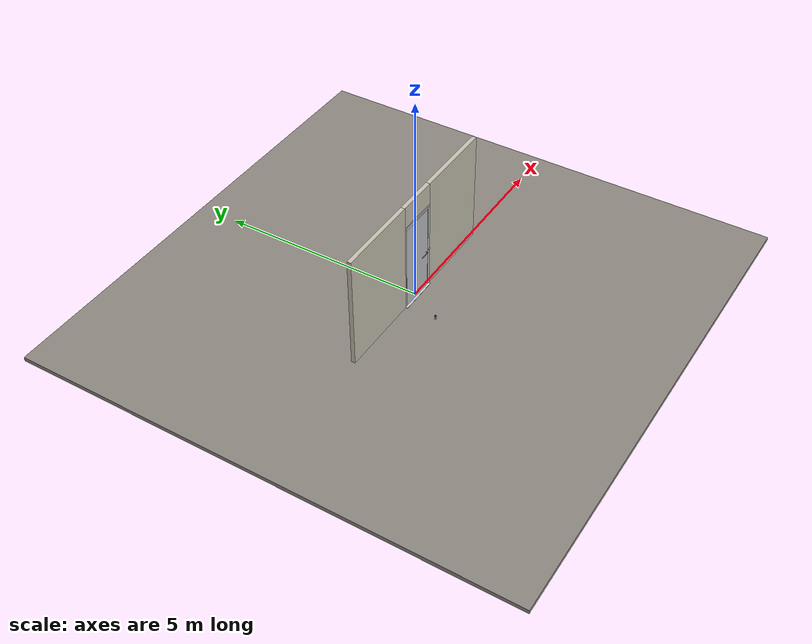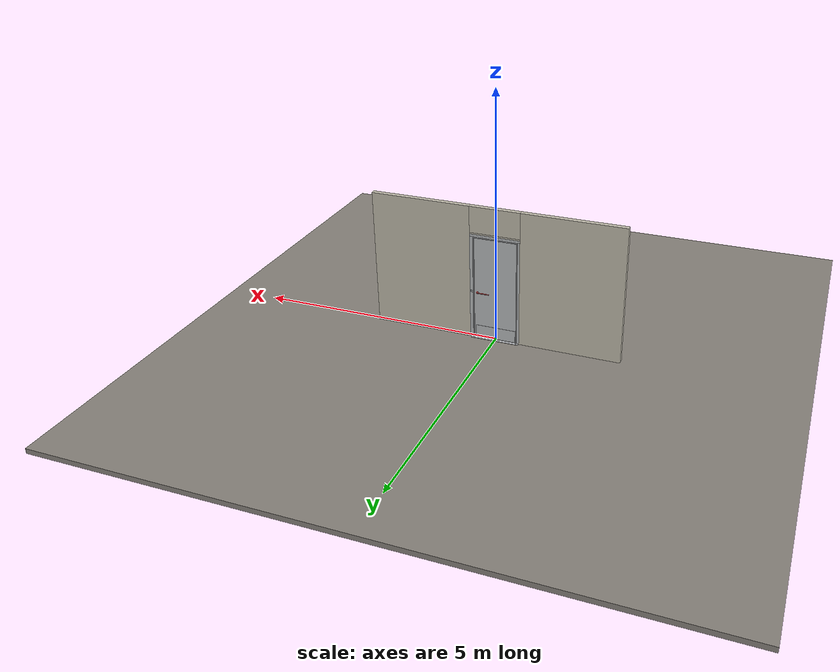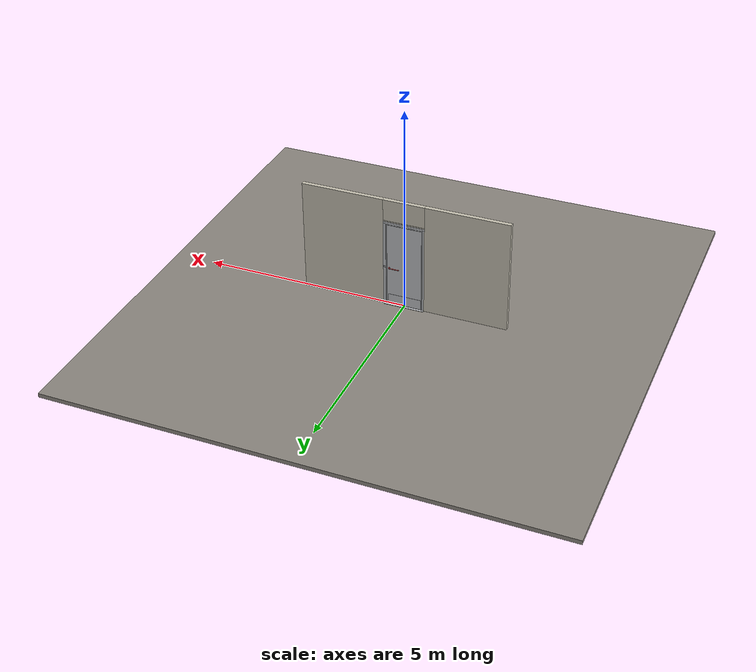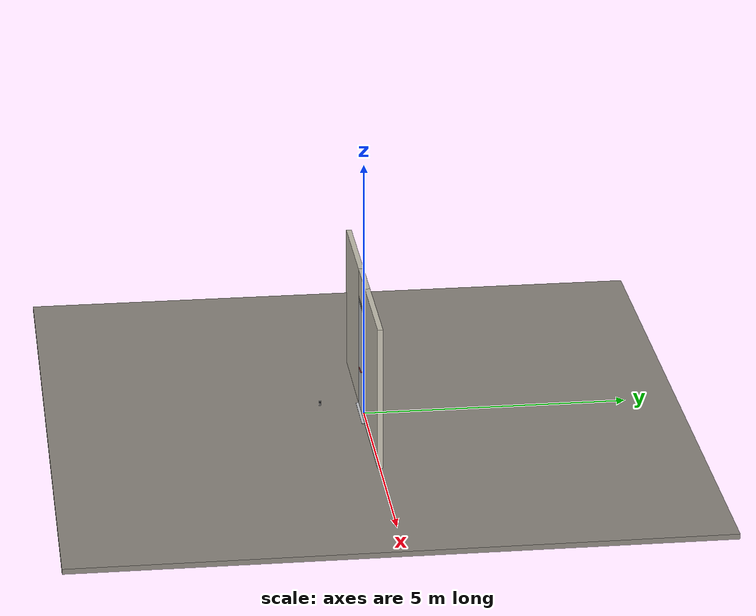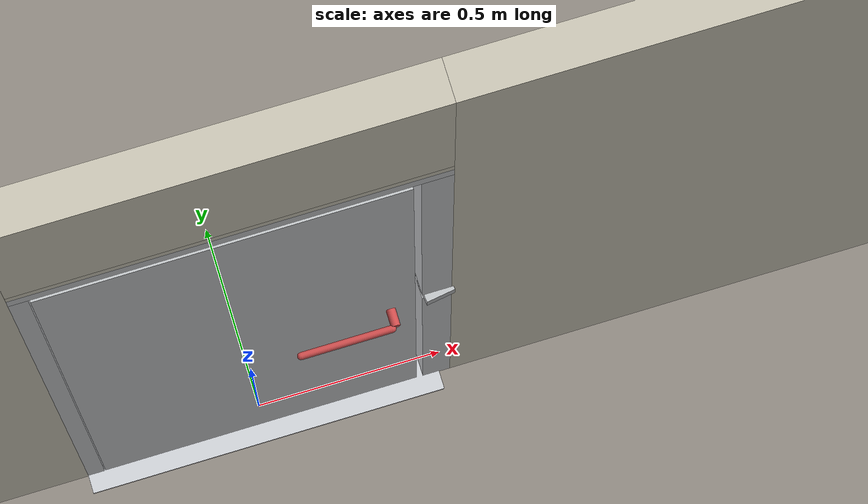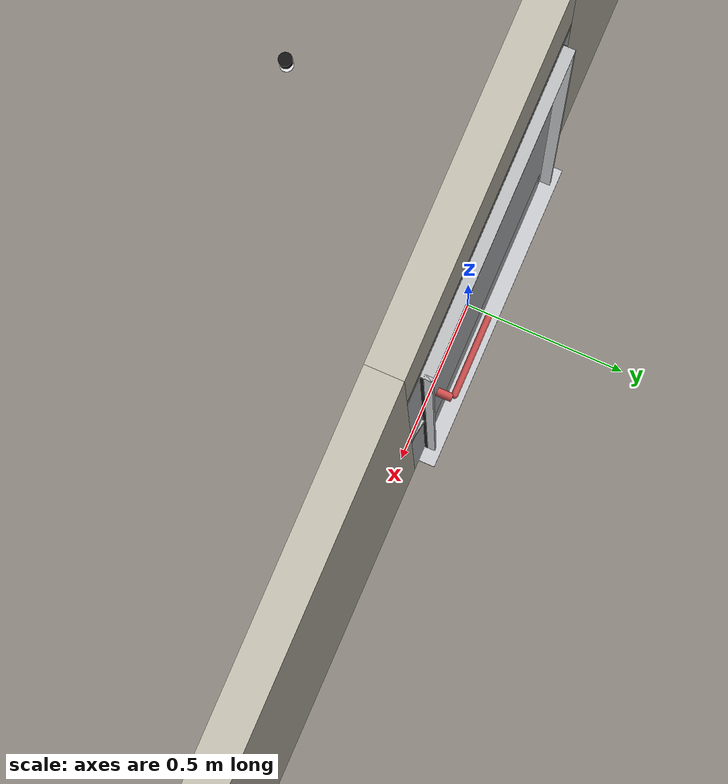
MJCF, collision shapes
<?xml version="1.0" ?>
<mujoco model="db0003_cold_storage_simple">
  <compiler angle="radian" meshdir="../../hardware" texturedir="../../textures" autolimits="true" inertiafromgeom="false"/>
  <option timestep="0.002" integrator="implicitfast" cone="elliptic" impratio="10" noslip_iterations="3">
    <flag multiccd="enable"/>
  </option>
  <size memory="16M"/>
  <default>
    <geom condim="4" solref="0.005 1" solimp="0.95 0.99 0.001"/>
    <joint solreflimit="0.005 1" solimplimit="0.95 0.99 0.001"/>
    <tendon solreflimit="0.005 1"/>
    <equality solref="0.002 1"/>
  </default>
  <visual>
    <headlight ambient="0.4 0.4 0.4" diffuse="0.7 0.7 0.7" specular="0.2 0.2 0.2"/>
    <quality shadowsize="4096"/>
    <map znear="0.01" zfar="60"/>
  </visual>
  <asset>
    <mesh name="hinge_05d9a38dfa" file="hinge_05d9a38dfa.obj"/>
    <mesh name="hinge_jamb_953fb56768" file="hinge_jamb_953fb56768.obj"/>
    <mesh name="lever_40740b93f7" file="lever_40740b93f7.obj"/>
    <material name="mat_floor" rgba="0.55 0.53 0.5 1" specular="0.2" shininess="0.15" reflectance="0"/>
    <material name="mat_wall" rgba="0.78 0.76 0.7 1" specular="0.2" shininess="0.1" reflectance="0"/>
    <material name="mat_hinge" rgba="0.55 0.56 0.58 1" specular="0.8" shininess="0.55" reflectance="0.4"/>
    <material name="mat_leaf" rgba="0.75 0.76 0.77 1" specular="0.8" shininess="0.65" reflectance="0.4"/>
    <material name="mat_op_chrome" rgba="0.9 0.9 0.92 1" specular="0.8" shininess="0.9" reflectance="0.4"/>
    <material name="mat_trim" rgba="0.85 0.66 0.3 1" specular="0.8" shininess="0.75" reflectance="0.4"/>
    <material name="mat_bolt" rgba="0.75 0.76 0.77 1" specular="0.8" shininess="0.65" reflectance="0.4"/>
    <material name="mat_frame" rgba="0.75 0.76 0.77 1" specular="0.8" shininess="0.65" reflectance="0.4"/>
    <material name="mat_seal" rgba="0.1 0.1 0.1 1" specular="0.2" shininess="0.1" reflectance="0"/>
    <material name="mat_threshold" rgba="0.8 0.81 0.83 1" specular="0.8" shininess="0.6" reflectance="0.4"/>
    <material name="mat_kick" rgba="0.75 0.76 0.77 1" specular="0.8" shininess="0.65" reflectance="0.4"/>
    <material name="mat_placard" rgba="0.95 0.75 0.05 1" specular="0.2" shininess="0.5" reflectance="0"/>
    <material name="mat_bumper_stop" rgba="0.08 0.08 0.08 1" specular="0.2" shininess="0.1" reflectance="0"/>
    <material name="mat_stop_base" rgba="0.9 0.9 0.92 1" specular="0.8" shininess="0.9" reflectance="0.4"/>
    <texture name="skybox" type="skybox" builtin="gradient" rgb1="0.6 0.7 0.85" rgb2="0.9 0.92 0.95" width="256" height="256"/>
  </asset>
  <worldbody>
    <light name="sun" pos="1.5 -2.5 4" dir="-0.3 0.5 -0.8" directional="true" diffuse="0.8 0.8 0.8" specular="0.3 0.3 0.3" castshadow="true"/>
    <light name="fill" pos="-1.5 2.5 3" dir="0.3 -0.5 -0.7" directional="true" diffuse="0.35 0.35 0.4" castshadow="false"/>
    <camera name="robot_view" pos="0 -2.640625 1.814375" xyaxes="1 0 0 0 0.26963 0.962964" fovy="52"/>
    <camera name="far_view" pos="0 2.640625 1.814375" xyaxes="-1 0 0 0 -0.26963 0.962964" fovy="52"/>
    <camera name="iso" pos="2.006875 -2.218125 2.236875" xyaxes="0.741536 0.670913 0 -0.242917 0.268487 0.932151" fovy="46"/>
    <camera name="detail_handle" pos="0.338 -0.905 1.28" xyaxes="0.97561 0.219512 0 -0.070934 0.315262 0.94635" fovy="38"/>
    <geom name="floor" type="box" size="6 6 0.05" pos="0 0 -0.05" material="mat_floor" group="0" contype="1" conaffinity="1" friction="0.8 0.005 0.0001" density="2400"/>
    <geom name="wall_left" type="box" size="1.0075 0.05 1.375" pos="-1.4925 0 1.375" material="mat_wall" group="0" contype="1" conaffinity="1" friction="0.6 0.005 0.0001" density="800"/>
    <geom name="wall_right" type="box" size="0.9925 0.05 1.375" pos="1.5075 0 1.375" material="mat_wall" group="0" contype="1" conaffinity="1" friction="0.6 0.005 0.0001" density="800"/>
    <geom name="wall_header" type="box" size="0.5 0.05 0.2625" pos="0.015 0 2.4875" material="mat_wall" group="0" contype="1" conaffinity="1" friction="0.6 0.005 0.0001" density="800"/>
    <geom name="hinge_0_jamb" type="mesh" mesh="hinge_jamb_953fb56768" pos="-0.437 -0.057 0.262" material="mat_hinge" group="1" contype="0" conaffinity="0" density="7850"/>
    <geom name="hinge_1_jamb" type="mesh" mesh="hinge_jamb_953fb56768" pos="-0.437 -0.057 1.9464" material="mat_hinge" group="1" contype="0" conaffinity="0" density="7850"/>
    <geom name="jamb_hinge" type="box" size="0.0225 0.05 1.075" pos="-0.4625 0 1.075" material="mat_frame" group="0" contype="1" conaffinity="1" friction="0.6 0.005 0.0001" density="300"/>
    <geom name="strike_1000_wall_n" type="box" size="0.0375 0.02125 0.019" pos="0.4775 0.02875 1" material="mat_frame" group="0" contype="1" conaffinity="1" friction="0.6 0.005 0.0001" density="300"/>
    <geom name="strike_1000_wall_p" type="box" size="0.0375 0.008 0.019" pos="0.4775 -0.0155 1" material="mat_frame" group="0" contype="1" conaffinity="1" friction="0.6 0.005 0.0001" density="300"/>
    <geom name="strike_1000_ramp" type="box" size="0.0375 0.023512 0.019" pos="0.480582 -0.041168 1" quat="0.997211 0 0 0.074638" material="mat_frame" group="0" contype="1" conaffinity="1" friction="0.12 0.005 0.0001" density="300"/>
    <geom name="strike_1000_ramp_n" type="box" size="0.0375 0.023512 0.019" pos="0.480582 0.029168 1" quat="0.997211 0 0 -0.074638" material="mat_frame" group="0" contype="1" conaffinity="1" friction="0.12 0.005 0.0001" density="300"/>
    <geom name="strike_1000_back" type="box" size="0.0325 0.0075 0.019" pos="0.4825 0 1" material="mat_frame" group="0" contype="1" conaffinity="1" friction="0.6 0.005 0.0001" density="300"/>
    <geom name="jamb_strike_0" type="box" size="0.0375 0.05 0.4905" pos="0.4775 0 0.4905" material="mat_frame" group="0" contype="1" conaffinity="1" friction="0.6 0.005 0.0001" density="300"/>
    <geom name="jamb_strike_1" type="box" size="0.0375 0.05 0.5655" pos="0.4775 0 1.5845" material="mat_frame" group="0" contype="1" conaffinity="1" friction="0.6 0.005 0.0001" density="300"/>
    <geom name="jamb_head" type="box" size="0.5 0.05 0.0225" pos="0.015 0 2.1725" material="mat_frame" group="0" contype="1" conaffinity="1" friction="0.6 0.005 0.0001" density="300"/>
    <geom name="head_stud" type="box" size="0.5 0.05 0.015" pos="0.015 0 2.21" material="mat_wall" group="0" contype="1" conaffinity="1" friction="0.6 0.005 0.0001" density="500"/>
    <geom name="stop_hinge" type="box" size="0.0055 0.016 1.075" pos="-0.4345 0.0665 1.075" material="mat_frame" group="0" contype="1" conaffinity="1" friction="0.6 0.005 0.0001" density="300"/>
    <geom name="stop_strike" type="box" size="0.0055 0.016 1.075" pos="0.4345 0.0665 1.075" material="mat_frame" group="0" contype="1" conaffinity="1" friction="0.6 0.005 0.0001" density="300"/>
    <geom name="stop_head" type="box" size="0.44 0.016 0.0055" pos="0 0.0665 2.1445" material="mat_frame" group="0" contype="1" conaffinity="1" friction="0.6 0.005 0.0001" density="300"/>
    <geom name="seal_hinge" type="box" size="0.004 0.005 1.075" pos="-0.437 0.055 1.075" material="mat_seal" group="1" contype="0" conaffinity="0" density="1100"/>
    <geom name="seal_strike" type="box" size="0.004 0.005 1.075" pos="0.437 0.055 1.075" material="mat_seal" group="1" contype="0" conaffinity="0" density="1100"/>
    <geom name="seal_head" type="box" size="0.42 0.005 0.008" pos="0 0.055 2.138" material="mat_seal" group="1" contype="0" conaffinity="0" density="1100"/>
    <geom name="threshold" type="box" size="0.485 0.1 0.004" pos="0 0 0.004" material="mat_threshold" group="0" contype="1" conaffinity="1" friction="0.6 0.005 0.0001" density="2700"/>
    <geom name="door_stop_base" type="cylinder" size="0.022 0.003" pos="-0.453 -0.788 0.003" material="mat_stop_base" group="0" contype="1" conaffinity="1" friction="0.6 0.005 0.0001" density="7850"/>
    <geom name="door_stop_post" type="cylinder" size="0.012 0.0245" pos="-0.453 -0.788 0.0305" material="mat_stop_base" group="0" contype="1" conaffinity="1" friction="0.6 0.005 0.0001" density="7850"/>
    <geom name="door_stop_bumper" type="cylinder" size="0.022 0.02" pos="-0.453 -0.788 0.075" material="mat_bumper_stop" group="0" contype="1" conaffinity="1" friction="0.6 0.005 0.0001" density="1100"/>
    <site name="approach_point" pos="0 -1.5 0" quat="1 0 0 0" size="0.05" rgba="0.2 0.9 0.2 0.5" group="4"/>
    <site name="goal_point" pos="0 1.5 0" quat="1 0 0 0" size="0.05" rgba="0.2 0.9 0.2 0.5" group="4"/>
    <site name="door_plane_center" pos="0 0 1.075" quat="1 0 0 0" size="0.02" rgba="0.2 0.9 0.2 0.5" group="4"/>
    <body name="leaf_riser" pos="-0.44 0 0">
      <inertial pos="0 0 0" mass="0.01" quat="1 0 0 0" diaginertia="0.000001 0.000001 0.000001"/>
      <joint name="leaf_rise" type="slide" axis="0 0 1" limited="true" range="0 0.0264" damping="1" armature="0.5"/>
      <body name="leaf" pos="0 0 0">
        <inertial pos="0.416277 0.00085 1.019498" mass="43.742116" quat="0.499346 -0.50271 0.494068 0.503818" diaginertia="2.916647695 17.98213172 20.813349321"/>
        <joint name="leaf_hinge" type="hinge" axis="0 0 -1" pos="0.003 -0.057 0" limited="true" range="0 1.570796" solreflimit="0.02 1" damping="0.260422" frictionloss="5.419886" armature="0.02"/>
        <geom name="leaf_slab" type="box" size="0.43 0.05 1.0572" pos="0.433 0 1.0692" material="mat_leaf" group="0" contype="1" conaffinity="1" friction="0.35 0.005 0.0001" density="1"/>
        <geom name="hinge_0" type="mesh" mesh="hinge_05d9a38dfa" pos="0.003 -0.057 0.262" material="mat_hinge" group="1" contype="0" conaffinity="0" density="7850"/>
        <geom name="hinge_1" type="mesh" mesh="hinge_05d9a38dfa" pos="0.003 -0.057 1.9464" material="mat_hinge" group="1" contype="0" conaffinity="0" density="7850"/>
        <geom name="kick_plate_p" type="box" size="0.4 0.0008 0.125" pos="0.433 0.0508 0.147" material="mat_kick" group="2" contype="0" conaffinity="0" density="7900"/>
        <site name="leaf_edge_mid" pos="0.863 0 1.0572" quat="1 0 0 0" size="0.02" rgba="0.2 0.9 0.2 0.5" group="4"/>
        <body name="leaf_handle" pos="0.798 0 1">
          <inertial pos="-0.047801 0 0" mass="2.884841" quat="0.707107 0 0 -0.707107" diaginertia="0.01820894 0.023630345 0.039870951"/>
          <joint name="leaf_handle_hinge" type="hinge" axis="0 -1 0" limited="true" range="0 0.5" damping="0.589936" frictionloss="0.07" stiffness="2.5" springref="-0.96" armature="0.01"/>
          <geom name="leaf_handle_lever_n" type="mesh" mesh="lever_40740b93f7" pos="0 -0.05 0" quat="0.707107 0.707107 0 0" material="mat_op_chrome" group="1" contype="0" conaffinity="0" density="3000"/>
          <geom name="leaf_handle_lever_col_n" type="capsule" size="0.0095 0.1155" pos="-0.125 -0.105 0" quat="0.707107 0 -0.707107 0" material="mat_op_chrome" group="3" contype="1" conaffinity="1" rgba="0.8 0.3 0.3 0.25" friction="0.7 0.01 0.0001" density="3000"/>
          <geom name="leaf_handle_hub_col_n" type="cylinder" size="0.012 0.022" pos="0 -0.08 0" quat="0.707107 -0.707107 0 0" material="mat_op_chrome" group="3" contype="1" conaffinity="1" rgba="0.8 0.3 0.3 0.25" friction="0.6 0.005 0.0001" density="3000"/>
          <geom name="leaf_handle_lever_p" type="mesh" mesh="lever_40740b93f7" pos="0 0.05 0" quat="-0.707107 0.707107 0 0" material="mat_op_chrome" group="1" contype="0" conaffinity="0" density="3000"/>
          <geom name="leaf_handle_lever_col_p" type="capsule" size="0.0095 0.1155" pos="-0.125 0.105 0" quat="0.707107 0 -0.707107 0" material="mat_op_chrome" group="3" contype="1" conaffinity="1" rgba="0.8 0.3 0.3 0.25" friction="0.7 0.01 0.0001" density="3000"/>
          <geom name="leaf_handle_hub_col_p" type="cylinder" size="0.012 0.022" pos="0 0.08 0" quat="0.707107 -0.707107 0 0" material="mat_op_chrome" group="3" contype="1" conaffinity="1" rgba="0.8 0.3 0.3 0.25" friction="0.6 0.005 0.0001" density="3000"/>
          <site name="leaf_handle_grip_n" pos="-0.2 -0.105 0" quat="1 0 0 0" size="0.012" rgba="0.2 0.9 0.2 0.5" group="4"/>
          <site name="leaf_handle_grip_p" pos="-0.2 0.105 0" quat="1 0 0 0" size="0.012" rgba="0.2 0.9 0.2 0.5" group="4"/>
        </body>
        <body name="leaf_latch_bolt" pos="0.863 0 1">
          <inertial pos="-0.012 0 0" mass="0.030762" quat="0 0 0.707107 0.707107" diaginertia="0.000000526 0.000002949 0.000002949"/>
          <joint name="leaf_latch_bolt_slide" type="slide" axis="-1 0 0" limited="true" range="0 0.006" damping="2" frictionloss="0.3" stiffness="3000" springref="-0.004" armature="0.1"/>
          <geom name="leaf_latch_bolt_capsule" type="capsule" size="0.006 0.012" pos="-0.012 0 0" quat="0.707107 0 0.707107 0" material="mat_bolt" group="0" contype="1" conaffinity="1" friction="0.2 0.005 0.0001" density="8500"/>
        </body>
      </body>
    </body>
  </worldbody>
  <tendon>
    <fixed name="leaf_latch_bolt_coupling" limited="true" range="0 10">
      <joint joint="leaf_latch_bolt_slide" coef="1"/>
      <joint joint="leaf_handle_hinge" coef="-0.012766"/>
    </fixed>
  </tendon>
  <equality>
    <joint name="leaf_rise_couple" joint1="leaf_rise" joint2="leaf_hinge" polycoef="0 0.007639 0 0 0" active="true"/>
  </equality>
  <sensor>
    <jointpos name="leaf_hinge_pos" joint="leaf_hinge"/>
    <jointvel name="leaf_hinge_vel" joint="leaf_hinge"/>
    <jointpos name="leaf_handle_hinge_pos" joint="leaf_handle_hinge"/>
    <jointvel name="leaf_handle_hinge_vel" joint="leaf_handle_hinge"/>
    <jointpos name="leaf_latch_bolt_slide_pos" joint="leaf_latch_bolt_slide"/>
    <jointvel name="leaf_latch_bolt_slide_vel" joint="leaf_latch_bolt_slide"/>
  </sensor>
</mujoco>
